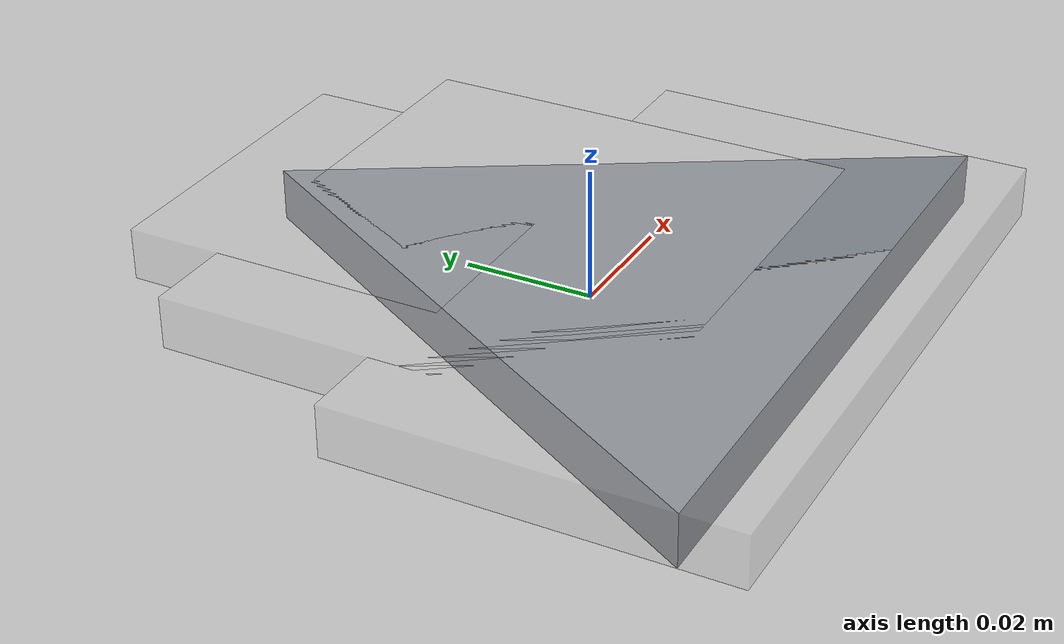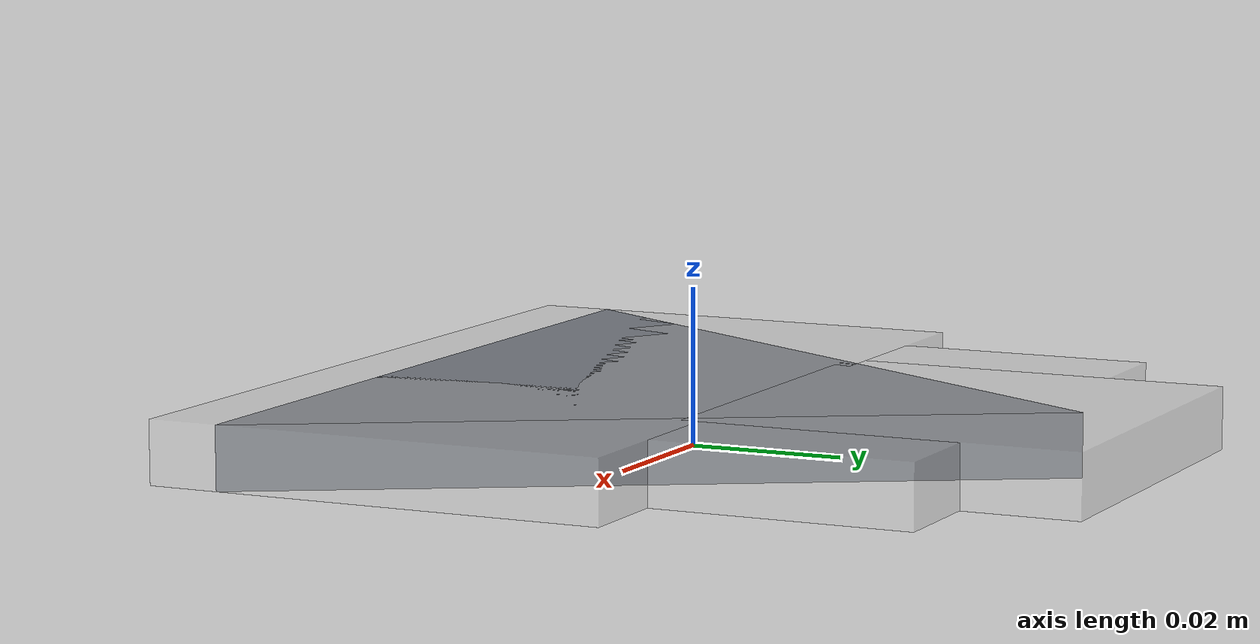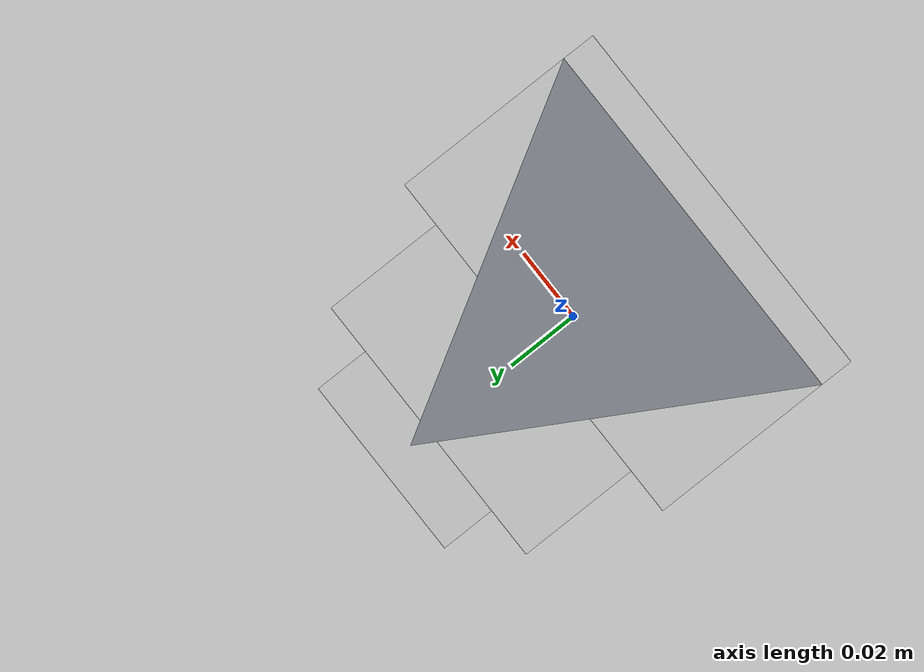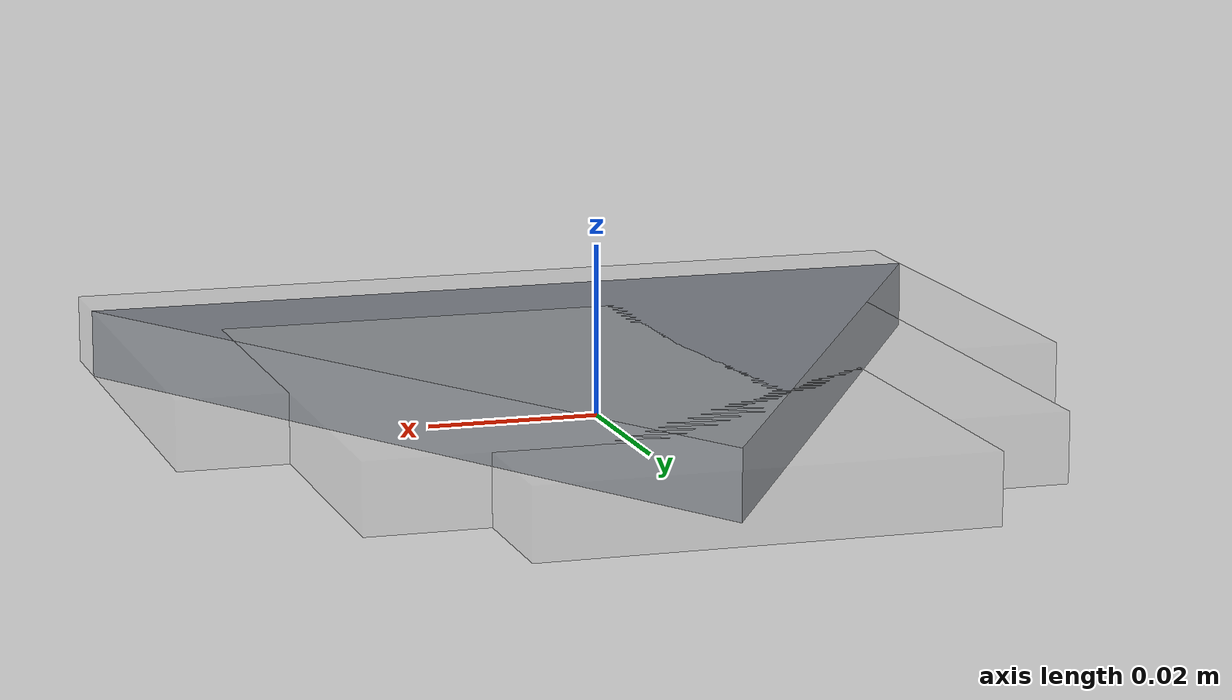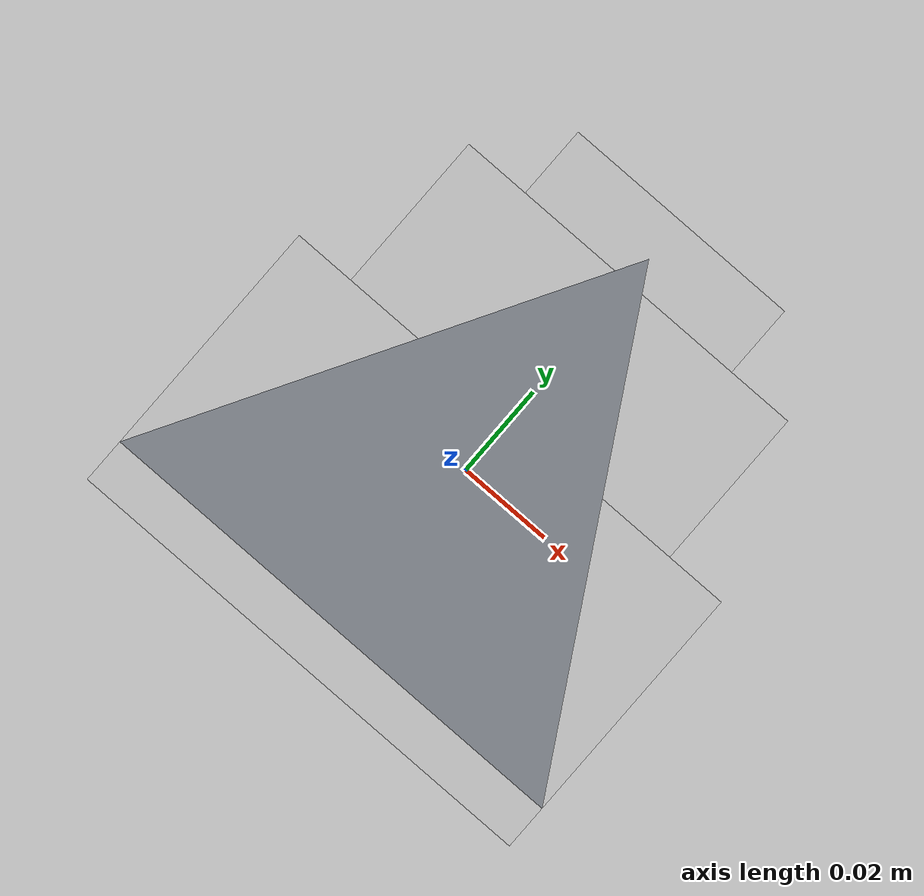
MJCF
<mujoco model="steel_plate_triangle">
  <asset>
    <mesh name="steel_plate_triangle_mesh" file="steel_plate_triangle.obj" scale="1.15 1.15 1" />
    <material name="steel_plate_triangle_mat" rgba="0.50 0.52 0.55 1" specular="0.18" shininess="0.25" reflectance="0.03" />
  </asset>

  <worldbody>
    <body>
      <body name="object">
        <site type="box" pos="0 0.0069 0.0072" quat="1 0 0 0" size="0.05175 0.04485 0.0008" group="0" rgba="0.8 0.8 0.0 0" name="top_side" />
        <site type="box" pos="0 0.0069 0.0008" quat="1 0 0 0" size="0.05175 0.04485 0.0008" group="0" rgba="0.8 0.8 0.0 0" name="bottom_side" />
        <site type="box" pos="0.05175 -0.0069 0.004" quat="1 0 0 0" size="0.00092 0.04485 0.004" group="0" rgba="0.8 0.8 0.0 0" name="right_side" />
        <site type="box" pos="-0.05175 -0.0069 0.004" quat="1 0 0 0" size="0.00092 0.04485 0.004" group="0" rgba="0.8 0.8 0.0 0" name="left_side" />
        <site type="sphere" pos="0 -0.00805 0.014" size="0.006" group="1" rgba="1 0 1 0" name="center_marker" />

        <geom
          name="steel_plate_triangle_visual"
          type="mesh"
          mesh="steel_plate_triangle_mesh"
          material="steel_plate_triangle_mat"
          contype="0"
          conaffinity="0"
          group="1"
        />
        <geom
          name="steel_plate_triangle_collision_back"
          solimp="0.998 0.998 0.001"
          solref="0.001 1"
          density="180"
          friction="1.0 0.3 0.1"
          type="box"
          pos="0 -0.01725 0.004"
          size="0.05175 0.0299 0.004"
          group="0"
          rgba="0.8 0.8 0.8 0.3"
        />
        <geom
          name="steel_plate_triangle_collision_mid_lower"
          solimp="0.998 0.998 0.001"
          solref="0.001 1"
          density="180"
          friction="1.0 0.3 0.1"
          type="box"
          pos="0 0.0115 0.004"
          size="0.0391 0.0345 0.004"
          group="0"
          rgba="0.8 0.8 0.8 0.3"
        />
        <geom
          name="steel_plate_triangle_collision_tip"
          solimp="0.998 0.998 0.001"
          solref="0.001 1"
          density="180"
          friction="1.0 0.3 0.1"
          type="box"
          pos="0 0.03565 0.004"
          size="0.0253 0.0253 0.004"
          group="0"
          rgba="0.8 0.8 0.8 0.3"
        />
      </body>

      <site rgba="0 0 0 0" size="0.005" pos="0 0 -0.06" name="bottom_site" />
      <site rgba="0 0 0 0" size="0.005" pos="0 0 0.04" name="top_site" />
      <site rgba="0 0 0 0" size="0.005" pos="0.05175 0.0138 0" name="horizontal_radius_site" />
    </body>
  </worldbody>
</mujoco>
